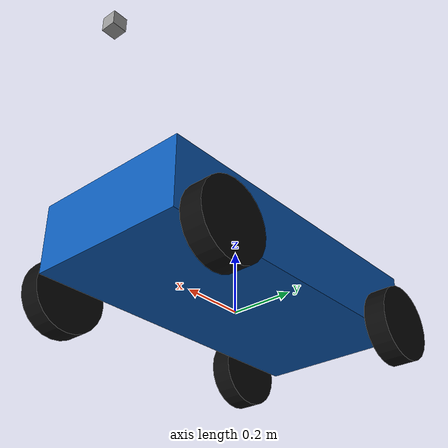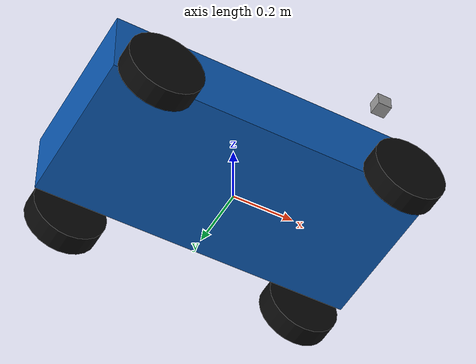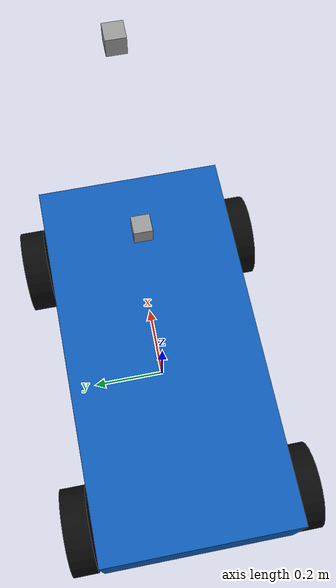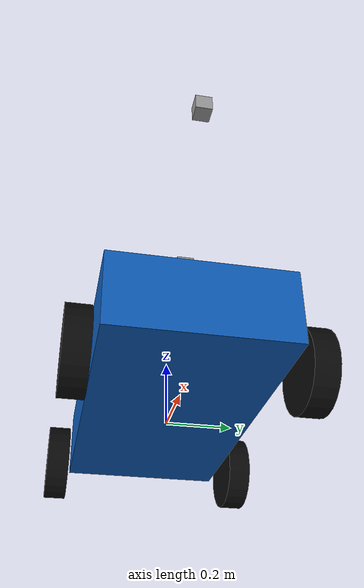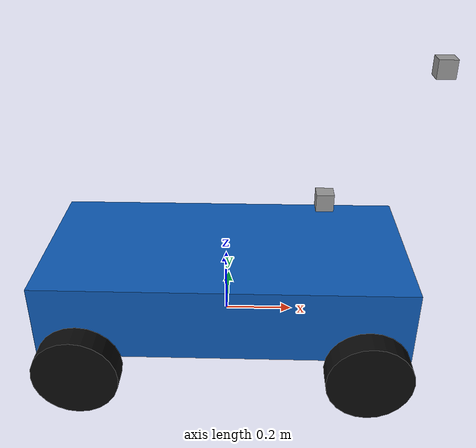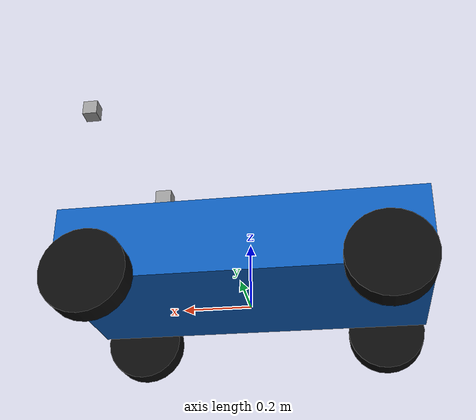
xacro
<?xml version="1.0"?>
<!--
  Ackermann vehicle for the course. Dimensions are taken from
  models/course_ackermann/model.sdf of course kit v1-w07; units are SI
  (m, kg, s, rad), axes follow REP-103: x forward, y left, z up.
-->
<robot name="course_ackermann" xmlns:xacro="http://www.ros.org/wiki/xacro">

  <!-- Chassis geometry -->
  <xacro:property name="wheelbase" value="0.80"/>
  <xacro:property name="track_width" value="0.62"/>
  <xacro:property name="wheel_radius" value="0.12"/>
  <xacro:property name="wheel_width" value="0.07"/>
  <xacro:property name="body_length" value="1.05"/>
  <xacro:property name="body_width" value="0.52"/>
  <xacro:property name="body_height" value="0.22"/>
  <xacro:property name="body_z" value="0.12"/>
  <xacro:property name="steering_limit" value="0.55"/>
  <xacro:property name="steering_effort" value="25.0"/>
  <xacro:property name="steering_velocity" value="2.0"/>

  <!-- Masses -->
  <xacro:property name="body_mass" value="12.0"/>
  <xacro:property name="wheel_mass" value="0.8"/>
  <xacro:property name="knuckle_mass" value="0.2"/>
  <xacro:property name="knuckle_inertia" value="0.001"/>
  <xacro:property name="sensor_mass" value="0.0333"/>
  <xacro:property name="sensor_size" value="0.05"/>

  <!-- Sensor mounts relative to base_link -->
  <xacro:property name="camera_xyz" value="0.28 0 0.38"/>
  <xacro:property name="lidar_xyz" value="0.28 0 0.38"/>
  <xacro:property name="imu_xyz" value="0.28 0 0.38"/>

  <material name="body_blue">
    <color rgba="0.05 0.36 0.72 1"/>
  </material>
  <material name="tire_black">
    <color rgba="0.04 0.04 0.04 1"/>
  </material>
  <material name="sensor_grey">
    <color rgba="0.6 0.6 0.6 1"/>
  </material>

  <!-- Inertia of a solid box and of a solid cylinder along its own z axis -->
  <xacro:macro name="box_inertial" params="mass x y z *origin">
    <inertial>
      <xacro:insert_block name="origin"/>
      <mass value="${mass}"/>
      <inertia ixx="${mass * (y * y + z * z) / 12.0}" ixy="0" ixz="0"
               iyy="${mass * (x * x + z * z) / 12.0}" iyz="0"
               izz="${mass * (x * x + y * y) / 12.0}"/>
    </inertial>
  </xacro:macro>

  <xacro:macro name="cylinder_inertial" params="mass radius length *origin">
    <inertial>
      <xacro:insert_block name="origin"/>
      <mass value="${mass}"/>
      <inertia ixx="${mass * (3 * radius * radius + length * length) / 12.0}" ixy="0" ixz="0"
               iyy="${mass * (3 * radius * radius + length * length) / 12.0}" iyz="0"
               izz="${mass * radius * radius / 2.0}"/>
    </inertial>
  </xacro:macro>

  <link name="base_link">
    <visual>
      <origin xyz="0 0 ${body_z}" rpy="0 0 0"/>
      <geometry>
        <box size="${body_length} ${body_width} ${body_height}"/>
      </geometry>
      <material name="body_blue"/>
    </visual>
    <collision>
      <origin xyz="0 0 ${body_z}" rpy="0 0 0"/>
      <geometry>
        <box size="${body_length} ${body_width} ${body_height}"/>
      </geometry>
    </collision>
    <xacro:box_inertial mass="${body_mass}" x="${body_length}" y="${body_width}" z="${body_height}">
      <origin xyz="0 0 ${body_z}" rpy="0 0 0"/>
    </xacro:box_inertial>
  </link>

  <!-- Wheel link rolled by pi/2 so the cylinder axis is the y axis of the joint -->
  <xacro:macro name="wheel" params="prefix parent x y">
    <link name="${prefix}_wheel">
      <visual>
        <origin xyz="0 0 0" rpy="${pi / 2} 0 0"/>
        <geometry>
          <cylinder radius="${wheel_radius}" length="${wheel_width}"/>
        </geometry>
        <material name="tire_black"/>
      </visual>
      <collision>
        <origin xyz="0 0 0" rpy="${pi / 2} 0 0"/>
        <geometry>
          <cylinder radius="${wheel_radius}" length="${wheel_width}"/>
        </geometry>
      </collision>
      <xacro:cylinder_inertial mass="${wheel_mass}" radius="${wheel_radius}" length="${wheel_width}">
        <origin xyz="0 0 0" rpy="${pi / 2} 0 0"/>
      </xacro:cylinder_inertial>
    </link>
    <joint name="${prefix}_wheel_joint" type="continuous">
      <parent link="${parent}"/>
      <child link="${prefix}_wheel"/>
      <origin xyz="${x} ${y} 0" rpy="0 0 0"/>
      <axis xyz="0 1 0"/>
    </joint>
  </xacro:macro>

  <!-- Front wheel: steering knuckle on base_link, wheel on the knuckle -->
  <xacro:macro name="steered_wheel" params="prefix x y">
    <link name="${prefix}_knuckle">
      <inertial>
        <origin xyz="0 0 0" rpy="0 0 0"/>
        <mass value="${knuckle_mass}"/>
        <inertia ixx="${knuckle_inertia}" ixy="0" ixz="0"
                 iyy="${knuckle_inertia}" iyz="0" izz="${knuckle_inertia}"/>
      </inertial>
    </link>
    <joint name="${prefix}_steering_joint" type="revolute">
      <parent link="base_link"/>
      <child link="${prefix}_knuckle"/>
      <origin xyz="${x} ${y} 0" rpy="0 0 0"/>
      <axis xyz="0 0 1"/>
      <limit lower="${-steering_limit}" upper="${steering_limit}"
             effort="${steering_effort}" velocity="${steering_velocity}"/>
    </joint>
    <xacro:wheel prefix="${prefix}" parent="${prefix}_knuckle" x="0" y="0"/>
  </xacro:macro>

  <xacro:steered_wheel prefix="front_left" x="${wheelbase / 2}" y="${track_width / 2}"/>
  <xacro:steered_wheel prefix="front_right" x="${wheelbase / 2}" y="${-track_width / 2}"/>
  <xacro:wheel prefix="rear_left" parent="base_link" x="${-wheelbase / 2}" y="${track_width / 2}"/>
  <xacro:wheel prefix="rear_right" parent="base_link" x="${-wheelbase / 2}" y="${-track_width / 2}"/>

  <!-- Sensor frame fixed to its parent; xyz is the offset in the parent frame -->
  <xacro:macro name="sensor" params="name parent xyz">
    <link name="${name}_link">
      <visual>
        <origin xyz="0 0 0" rpy="0 0 0"/>
        <geometry>
          <box size="${sensor_size} ${sensor_size} ${sensor_size}"/>
        </geometry>
        <material name="sensor_grey"/>
      </visual>
      <collision>
        <origin xyz="0 0 0" rpy="0 0 0"/>
        <geometry>
          <box size="${sensor_size} ${sensor_size} ${sensor_size}"/>
        </geometry>
      </collision>
      <xacro:box_inertial mass="${sensor_mass}" x="${sensor_size}" y="${sensor_size}" z="${sensor_size}">
        <origin xyz="0 0 0" rpy="0 0 0"/>
      </xacro:box_inertial>
    </link>
    <joint name="${name}_joint" type="fixed">
      <parent link="${parent}"/>
      <child link="${name}_link"/>
      <origin xyz="${xyz}" rpy="0 0 0"/>
    </joint>
  </xacro:macro>

  <xacro:sensor name="camera" parent="base_link" xyz="${camera_xyz}"/>
  <xacro:sensor name="lidar" parent="camera_link" xyz="${lidar_xyz}"/>
  <xacro:sensor name="imu" parent="base_link" xyz="${imu_xyz}"/>

</robot>
